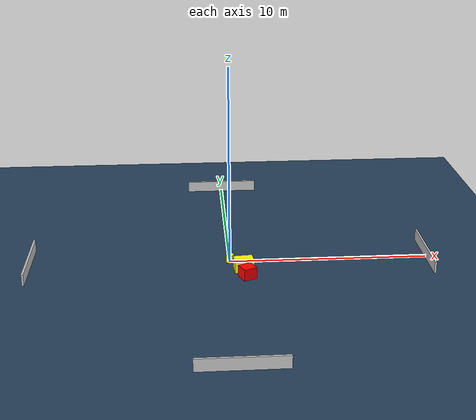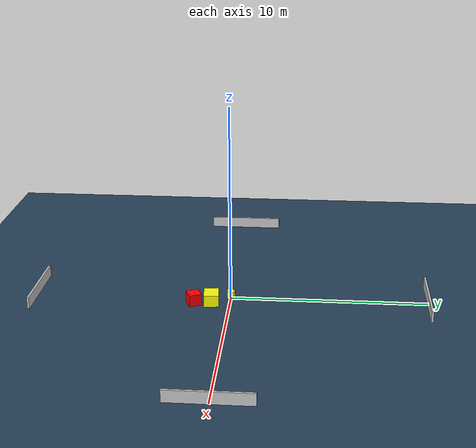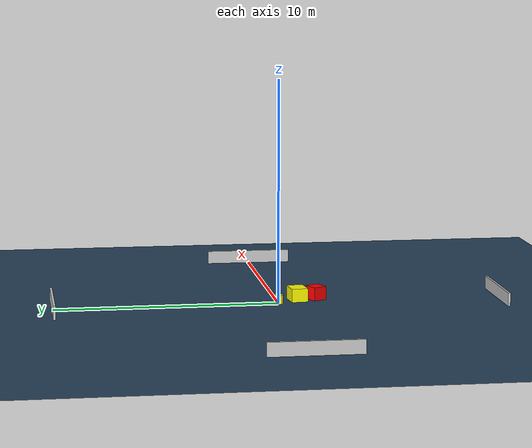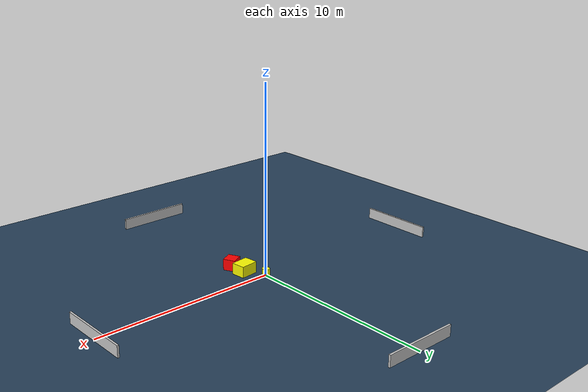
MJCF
<?xml version="1.0" ?>
<mujoco model="generated_environment">
  <option timestep="0.01" integrator="RK4" cone="elliptic"/>
  <default>
    <geom density="1"/>
  </default>
  <asset>
    <texture builtin="gradient" height="3072" name="skybox" rgb1="0.3 0.5 0.7" rgb2="0 0 0" type="skybox" width="512"/>
    <texture builtin="checker" height="300" name="groundplane" rgb1="0.2 0.3 0.4" rgb2="0.1 0.2 0.3" type="2d" width="300"/>
    <material name="groundplane" reflectance="0.2" texrepeat="5 5" texture="groundplane"/>
  </asset>
  <worldbody>
    <light dir="0 0 -1" directional="true" pos="0 0 1.5"/>
    <geom condim="3" friction="0.5 0.005 0.001" material="groundplane" name="floor" pos="0 0 0" size="0 0 0.05" type="plane"/>
    <body name="walls">
      <geom name="wall_1" condim="4" pos="-10.0 0.0 0.3" rgba="0.800000011920929 0.800000011920929 0.800000011920929 1.0" size="0.05 2.0 0.3" type="box"/>
      <geom name="wall_2" condim="4" pos="10.0 0.0 0.3" rgba="0.800000011920929 0.800000011920929 0.800000011920929 1.0" size="0.05 2.0 0.3" type="box"/>
      <geom name="wall_3" condim="4" pos="0.0 -10.0 0.3" rgba="0.800000011920929 0.800000011920929 0.800000011920929 1.0" size="2.0 0.05 0.3" type="box"/>
      <geom name="wall_4" condim="4" pos="0.0 10.0 0.3" rgba="0.800000011920929 0.800000011920929 0.800000011920929 1.0" size="2.0 0.05 0.3" type="box"/>
    </body>
    <body name="robot">
      <joint name="joint_x" type="slide" pos="0 0 0" axis="1 0 0"/>
      <joint name="joint_y" type="slide" pos="0 0 0" axis="0 1 0"/>
      <geom name="robot" type="cylinder" pos="0.0 0.0 0.2" size="0.2 0.2 0.0" mass="5.0" friction="1.0 0.005 0.0001" condim="4" rgba="1.0 1.0 0.0 1.0"/>
    </body>
    <body name="obstacle_1_movable">
      <geom name="obstacle_1_movable" condim="4" pos="0.6336177671650697 -0.9424892971926541 0.3" euler="0 0 275.7371652501049" friction="0.0 0.005 0.001" rgba="1.0 1.0 0.0 1.0" size="0.37147759618236065 0.48049794934151285 0.3" type="box" mass="0.1"/>
      <joint type="free"/>
    </body>
    <body name="obstacle_2_static">
      <geom name="obstacle_2_static" condim="4" pos="0.7618254776686602 -1.8201836942851262 0.3" euler="0 0 295.4432986757696" friction="0.0 0.005 0.001" rgba="1.0 0.0 0.0 1.0" size="0.321999221084664 0.33571401345469326 0.3" type="box"/>
    </body>
  </worldbody>
  <actuator>
    <motor name="actuator_x" joint="joint_x" gear="1" ctrlrange="-1 1"/>
    <motor name="actuator_y" joint="joint_y" gear="1" ctrlrange="-1 1"/>
  </actuator>
</mujoco>
